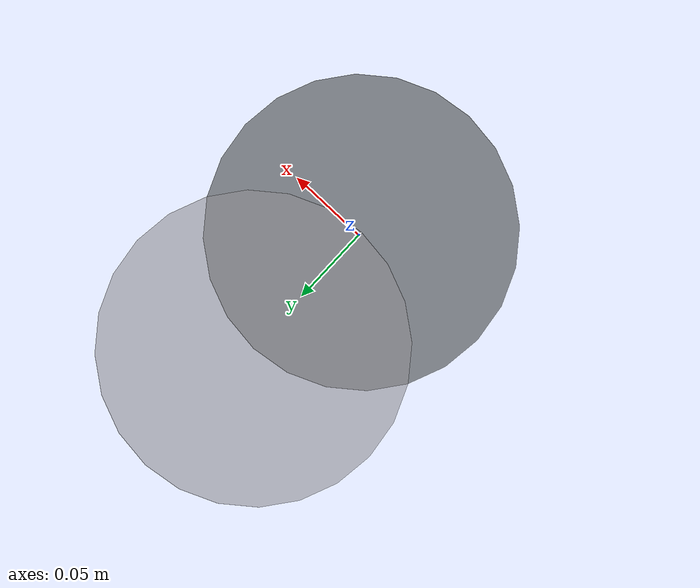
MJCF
<?xml version="1.0" encoding="utf-8"?>
<mujoco model="metallography_polisher">
  <compiler angle="radian" autolimits="true"/>
  <default>
    <default class="body"><geom contype="1" conaffinity="1"/></default>
  </default>
  <worldbody>
    <body name="base">
      <geom type="cylinder" size="0.09 0.06" pos="0 0 0.06" rgba="0.5 0.52 0.55 1" class="body"/>
      <body name="polish_lid" pos="0 0.09 0.12">
        <joint name="polish_lid_joint" type="hinge" axis="1 0 0" range="0 1.5" damping="0.4" frictionloss="0.3"/>
  <geom type="cylinder" size="0.09 0.005" pos="0 0 0" rgba="0.6 0.6 0.62 0.6" class="body"/>
      </body>
    </body>
  </worldbody>
</mujoco>
